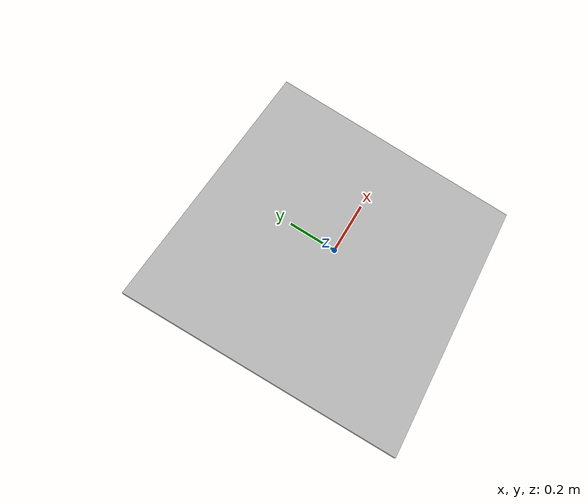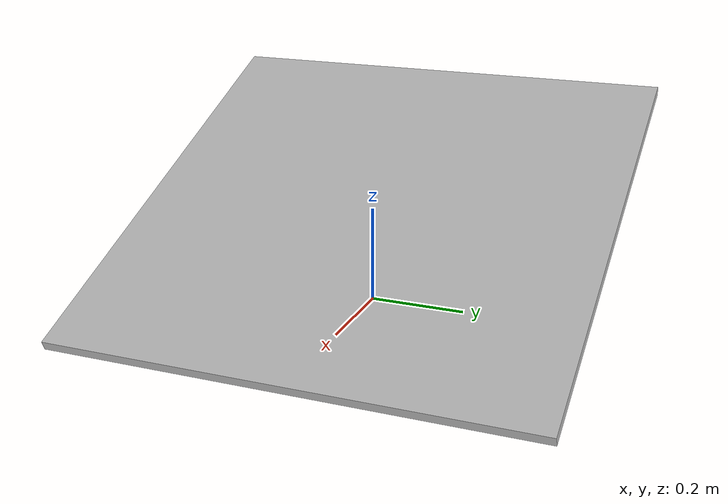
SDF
<?xml version='1.0'?>
<sdf version='1.6'>
   <model name="box">
      <static>true</static>

      <pose>0 0 0.2 0 0.4 0</pose>
      <link name="link">
        <collision name="collision">
          <geometry>
            <box>
              <size>1 1.0 .02</size>
            </box>
          </geometry>
        </collision>
        <visual name="visual">
          <geometry>
            <box>
              <size>1 1.0 .02</size>
            </box>
          </geometry>
        </visual>
      </link>
    </model>
</sdf>
